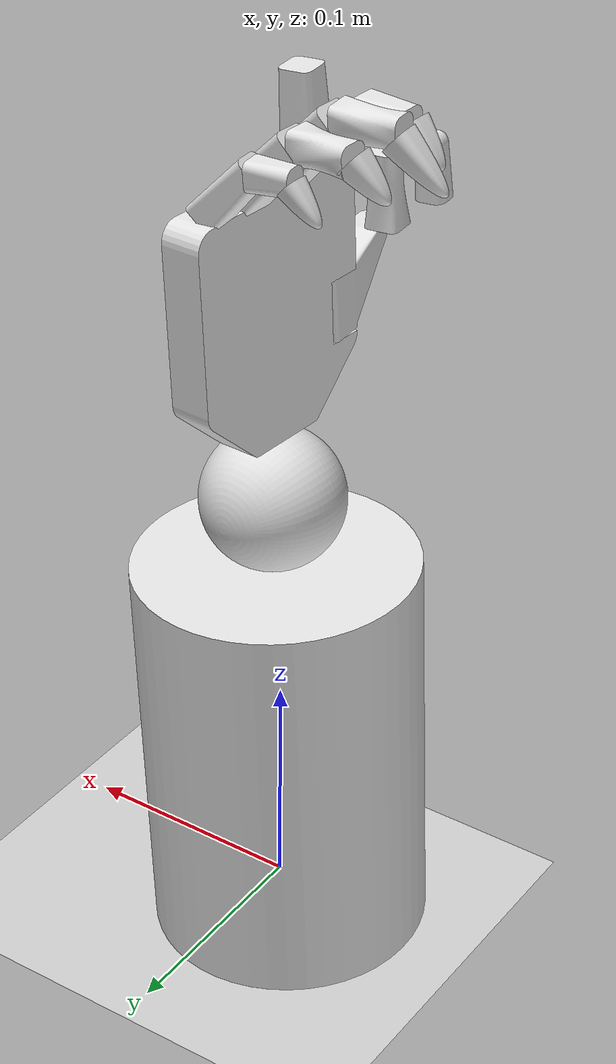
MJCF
<mujoco model="Hand_forearm">
  <compiler angle="radian" autolimits="true" meshdir="assets" />
  <option gravity="0 0 -9.81" integrator="implicitfast" />
  <default>
    <geom contype="2" conaffinity="1" />
  </default>
  <asset>
    <mesh name="fore_arm_1_0" file="fore_arm_1_0.stl" />
    <mesh name="fore_arm_1_1" file="fore_arm_1_1.stl" />
    <mesh name="wrist_1_2" file="wrist_1_2.stl" />
    <mesh name="wrist_1_3" file="wrist_1_3.stl" />
    <mesh name="human_hand_v3__Palm_1_4" file="human_hand_v3__Palm_1_4.stl" />
    <mesh name="human_hand_v3__Palm_1_5" file="human_hand_v3__Palm_1_5.stl" />
    <mesh name="Thumb_finger__Thumb_Base_1_6" file="Thumb_finger__Thumb_Base_1_6.stl" />
    <mesh name="Thumb_finger__Thumb_Base_1_7" file="Thumb_finger__Thumb_Base_1_7.stl" />
    <mesh name="Thumb_finger__Thumb_Proximal_1_8" file="Thumb_finger__Thumb_Proximal_1_8.stl" />
    <mesh name="Thumb_finger__Thumb_Proximal_1_9" file="Thumb_finger__Thumb_Proximal_1_9.stl" />
    <mesh name="Thumb_finger__Thumb_Distal_v2_1_10" file="Thumb_finger__Thumb_Distal_v2_1_10.stl" />
    <mesh name="Thumb_finger__Thumb_Distal_v2_1_11" file="Thumb_finger__Thumb_Distal_v2_1_11.stl" />
    <mesh name="index_assem__Index_Proximal_1_12" file="index_assem__Index_Proximal_1_12.stl" />
    <mesh name="index_assem__Index_Proximal_1_13" file="index_assem__Index_Proximal_1_13.stl" />
    <mesh name="index_assem__Index_Middle_1_14" file="index_assem__Index_Middle_1_14.stl" />
    <mesh name="index_assem__Index_Middle_1_15" file="index_assem__Index_Middle_1_15.stl" />
    <mesh name="index_assem__Index_Distal_1_16" file="index_assem__Index_Distal_1_16.stl" />
    <mesh name="index_assem__Index_Distal_1_17" file="index_assem__Index_Distal_1_17.stl" />
    <mesh name="Middle_Finger__Middle_Proximal_5_18" file="Middle_Finger__Middle_Proximal_5_18.stl" />
    <mesh name="Middle_Finger__Middle_Proximal_5_19" file="Middle_Finger__Middle_Proximal_5_19.stl" />
    <mesh name="Middle_Finger__Middle_Middle_4_20" file="Middle_Finger__Middle_Middle_4_20.stl" />
    <mesh name="Middle_Finger__Middle_Middle_4_21" file="Middle_Finger__Middle_Middle_4_21.stl" />
    <mesh name="Middle_Finger__Middle_Distal_4_22" file="Middle_Finger__Middle_Distal_4_22.stl" />
    <mesh name="Middle_Finger__Middle_Distal_4_23" file="Middle_Finger__Middle_Distal_4_23.stl" />
    <mesh name="Ring_finger__Ring_Proximal_1_24" file="Ring_finger__Ring_Proximal_1_24.stl" />
    <mesh name="Ring_finger__Ring_Proximal_1_25" file="Ring_finger__Ring_Proximal_1_25.stl" />
    <mesh name="Ring_finger__Ring_Middle_1_26" file="Ring_finger__Ring_Middle_1_26.stl" />
    <mesh name="Ring_finger__Ring_Middle_1_27" file="Ring_finger__Ring_Middle_1_27.stl" />
    <mesh name="Ring_finger__Ring_Distal_1_28" file="Ring_finger__Ring_Distal_1_28.stl" />
    <mesh name="Ring_finger__Ring_Distal_1_29" file="Ring_finger__Ring_Distal_1_29.stl" />
    <mesh name="Pinky_finger__Pinky_Proximal_1_30" file="Pinky_finger__Pinky_Proximal_1_30.stl" />
    <mesh name="Pinky_finger__Pinky_Proximal_1_31" file="Pinky_finger__Pinky_Proximal_1_31.stl" />
    <mesh name="Pinky_finger__Pinky_Middle_1_32" file="Pinky_finger__Pinky_Middle_1_32.stl" />
    <mesh name="Pinky_finger__Pinky_Middle_1_33" file="Pinky_finger__Pinky_Middle_1_33.stl" />
    <mesh name="Pinky_finger__Pinky_Distal_1_34" file="Pinky_finger__Pinky_Distal_1_34.stl" />
    <mesh name="Pinky_finger__Pinky_Distal_1_35" file="Pinky_finger__Pinky_Distal_1_35.stl" />
  </asset>
  <worldbody>
    <light pos="0 0 3" dir="0 0 -1" directional="true" />
    <geom name="ground" type="plane" size="5 5 0.1" contype="1" conaffinity="1" rgba="0.8 0.8 0.8 1" />
    <body name="base_link" pos="0 0 0.00362184" quat="0.711679 0.702004 0.0265207 0">
      <inertial pos="-0.0174187597 0.09 -0.0185985164" mass="2.03575" diaginertia="0.00366435 0.00732871 0.00732871" quat="0.707106781 0 0 -0.707106781" />
      <geom pos="0 0 0" quat="1 0 0 0" group="2" contype="0" conaffinity="0" type="mesh" mesh="fore_arm_1_0" rgba="0.894117647 0.894117647 0.894117647 1" name="base_link_visual0" />
      <geom pos="0 0 0" quat="1 0 0 0" group="3" type="mesh" mesh="fore_arm_1_1" rgba="0.4 0.4 0.4 1" name="base_link_collision0" />
      <body name="wrist_1" pos="-0.0174187597 0.21 -0.0185985164" quat="1 0 0 0">
        <joint name="fore_arm_1__wrist_1" pos="0 0 0" axis="0 1 0" type="hinge" range="-0.6 0.6" damping="0.0096045" armature="1.17917e-05" />
        <inertial pos="-3.12250226e-17 0 9.02056208e-17" mass="0.113097" diaginertia="4.0715e-05 4.0715e-05 4.0715e-05" quat="-0 0 -0.707106781 0.707106781" />
        <geom pos="0 0 0" quat="1 0 0 0" group="2" contype="0" conaffinity="0" type="mesh" mesh="wrist_1_2" rgba="0.894117647 0.894117647 0.894117647 1" name="wrist_1_visual0" />
        <geom pos="0 0 0" quat="1 0 0 0" group="3" type="mesh" mesh="wrist_1_3" rgba="0.4 0.4 0.4 1" name="wrist_1_collision0" />
        <body name="human_hand_v3_2__Palm_1" pos="-2.19426456e-06 0.0553974242 1.59257974e-05" quat="1 0 0 0">
          <joint name="wrist_1__human_hand_v3_2__Palm_1" pos="0 0 0" axis="0.136491042 0 -0.990641305" type="hinge" range="-1 1" damping="0.147961" armature="0.000517985" />
          <inertial pos="0.000250354687 0.0305062621 -0.00181705438" mass="0.146725" diaginertia="8.6166947e-05 0.000126512174 0.000204755979" quat="-0.442846972 0.556897198 0.508046583 -0.485428409" />
          <geom pos="0 0 0" quat="1 0 0 0" group="2" contype="0" conaffinity="0" type="mesh" mesh="human_hand_v3__Palm_1_4" rgba="0.894117647 0.894117647 0.894117647 1" name="human_hand_v3_2__Palm_1_visual0" />
          <geom pos="0 0 0" quat="1 0 0 0" group="3" type="mesh" mesh="human_hand_v3__Palm_1_5" rgba="0.4 0.4 0.4 1" name="human_hand_v3_2__Palm_1_collision0" />
          <body name="human_hand_v3_2__Thumb_finger_1__Thumb_Base_1" pos="-0.00505016951 0.00340473831 0.0366537282" quat="1 0 0 0">
            <joint name="human_hand_v3_2__Palm_1__human_hand_v3_2__Thumb_finger_1__Thumb_Base_1" pos="0 0 0" axis="0 1 0" type="hinge" range="0 1" damping="0.00371252" armature="8.1823e-06" />
            <inertial pos="-0.00653645209 0.0205272469 0.00495336418" mass="0.0146302" diaginertia="8.05766527e-07 3.18179044e-06 3.27284303e-06" quat="-0.141575759 0.849168462 0.421200035 -0.285411558" />
            <geom pos="0 0 0" quat="1 0 0 0" group="2" contype="0" conaffinity="0" type="mesh" mesh="Thumb_finger__Thumb_Base_1_6" rgba="0.894117647 0.894117647 0.894117647 1" name="human_hand_v3_2__Thumb_finger_1__Thumb_Base_1_visual0" />
            <geom pos="0 0 0" quat="1 0 0 0" group="3" type="mesh" mesh="Thumb_finger__Thumb_Base_1_7" rgba="0.4 0.4 0.4 1" name="human_hand_v3_2__Thumb_finger_1__Thumb_Base_1_collision0" />
            <body name="human_hand_v3_2__Thumb_finger_1__Thumb_Proximal_1" pos="-0.0193779842 0.0443163935 0.0146851136" quat="1 0 0 0">
              <joint name="human_hand_v3_2__Thumb_finger_1__Thumb_Base_1__human_hand_v3_2__Thumb_finger_1__Thumb_Proximal_1" pos="0 0 0" axis="-0.476687178 -0.353553132 0.8048413" type="hinge" range="0 1" damping="0.00188771" armature="4.71031e-06" />
              <inertial pos="-0.0111452598 0.00888220077 -0.00269890463" mass="0.00482838" diaginertia="1.22991858e-07 4.55144142e-07 4.6443e-07" quat="-0.259851613 0.90369068 -0.285599848 0.185075715" />
              <geom pos="0 0 0" quat="1 0 0 0" group="2" contype="0" conaffinity="0" type="mesh" mesh="Thumb_finger__Thumb_Proximal_1_8" rgba="0.894117647 0.894117647 0.894117647 1" name="human_hand_v3_2__Thumb_finger_1__Thumb_Proximal_1_visual0" />
              <geom pos="0 0 0" quat="1 0 0 0" group="3" type="mesh" mesh="Thumb_finger__Thumb_Proximal_1_9" rgba="0.4 0.4 0.4 1" name="human_hand_v3_2__Thumb_finger_1__Thumb_Proximal_1_collision0" />
              <body name="human_hand_v3_2__Thumb_finger_1__Thumb_Distal_v2_1" pos="-0.0238196197 0.0189835009 -0.00576827623" quat="1 0 0 0">
                <joint name="human_hand_v3_2__Thumb_finger_1__Thumb_Proximal_1__human_hand_v3_2__Thumb_finger_1__Thumb_Distal_v2_1" pos="0 0 0" axis="-0.47668724 -0.35355339 0.80484115" type="hinge" range="0 1.4" damping="0.000266238" armature="4.43016e-07" />
                <inertial pos="-0.0101664767 -0.000805660603 -0.00637526265" mass="0.00306267" diaginertia="5.86964656e-08 1.93958391e-07 1.98802343e-07" quat="0.946459016 0.163905647 -0.265927839 0.0814411089" />
                <geom pos="0 0 0" quat="1 0 0 0" group="2" contype="0" conaffinity="0" type="mesh" mesh="Thumb_finger__Thumb_Distal_v2_1_10" rgba="0.894117647 0.894117647 0.894117647 1" name="human_hand_v3_2__Thumb_finger_1__Thumb_Distal_v2_1_visual0" />
                <geom pos="0 0 0" quat="1 0 0 0" group="3" type="mesh" mesh="Thumb_finger__Thumb_Distal_v2_1_11" rgba="0.4 0.4 0.4 1" name="human_hand_v3_2__Thumb_finger_1__Thumb_Distal_v2_1_collision0" />
              </body>
            </body>
          </body>
          <body name="human_hand_v3_2__index_assem_2__Index_Proximal_1" pos="-0.0038217499 0.0786025758 0.0277379564" quat="1 0 0 0">
            <joint name="human_hand_v3_2__Palm_1__human_hand_v3_2__index_assem_2__Index_Proximal_1" pos="0 0 0" axis="0.13649107 0 -0.990641301" type="hinge" range="0 1.57" damping="0.0046419" armature="1.29433e-05" />
            <inertial pos="-0.0129939243 0.0131166702 -0.00179030928" mass="0.00857536" diaginertia="3.1185078e-07 1.2361772e-06 1.23618002e-06" quat="0.921443597 0.0344429264 -0.0666199515 -0.381204886" />
            <geom pos="0 0 0" quat="1 0 0 0" group="2" contype="0" conaffinity="0" type="mesh" mesh="index_assem__Index_Proximal_1_12" rgba="0.894117647 0.894117647 0.894117647 1" name="human_hand_v3_2__index_assem_2__Index_Proximal_1_visual0" />
            <geom pos="0 0 0" quat="1 0 0 0" group="3" type="mesh" mesh="index_assem__Index_Proximal_1_13" rgba="0.4 0.4 0.4 1" name="human_hand_v3_2__index_assem_2__Index_Proximal_1_collision0" />
            <body name="human_hand_v3_2__index_assem_2__Index_Middle_1" pos="-0.0273190781 0.0275771645 -0.00376403662" quat="1 0 0 0">
              <joint name="human_hand_v3_2__index_assem_2__Index_Proximal_1__human_hand_v3_2__index_assem_2__Index_Middle_1" pos="0 0 0" axis="-0.13649107 0 0.990641301" type="hinge" range="0 1.75" damping="0.000637408" armature="1.26227e-06" />
              <inertial pos="-0.0105480497 2.70428395e-16 -0.0014533157" mass="0.0037779" diaginertia="1.05473197e-07 2.04659e-07 2.04659804e-07" quat="-0.00910217062 0.99761609 0.000624098723 0.0684024673" />
              <geom pos="0 0 0" quat="1 0 0 0" group="2" contype="0" conaffinity="0" type="mesh" mesh="index_assem__Index_Middle_1_14" rgba="0.894117647 0.894117647 0.894117647 1" name="human_hand_v3_2__index_assem_2__Index_Middle_1_visual0" />
              <geom pos="0 0 0" quat="1 0 0 0" group="3" type="mesh" mesh="index_assem__Index_Middle_1_15" rgba="0.4 0.4 0.4 1" name="human_hand_v3_2__index_assem_2__Index_Middle_1_collision0" />
              <body name="human_hand_v3_2__index_assem_2__Index_Distal_1" pos="-0.0217941086 0 -0.00300280349" quat="1 0 0 0">
                <joint name="human_hand_v3_2__index_assem_2__Index_Middle_1__human_hand_v3_2__index_assem_2__Index_Distal_1" pos="0 0 0" axis="-0.13649107 0 0.990641301" type="hinge" range="0 1.22" damping="0.000105071" armature="6.89998e-08" />
                <inertial pos="-0.00467014616 -0.00471385134 -0.000643362851" mass="0.00155249" diaginertia="2.5871339e-08 4.74384958e-08 4.74399652e-08" quat="0.0896743213 0.917713471 0.376527491 0.0893730972" />
                <geom pos="0 0 0" quat="1 0 0 0" group="2" contype="0" conaffinity="0" type="mesh" mesh="index_assem__Index_Distal_1_16" rgba="0.894117647 0.894117647 0.894117647 1" name="human_hand_v3_2__index_assem_2__Index_Distal_1_visual0" />
                <geom pos="0 0 0" quat="1 0 0 0" group="3" type="mesh" mesh="index_assem__Index_Distal_1_17" rgba="0.4 0.4 0.4 1" name="human_hand_v3_2__index_assem_2__Index_Distal_1_collision0" />
              </body>
            </body>
          </body>
          <body name="human_hand_v3_2__Middle_Finger_1__Middle_Proximal_5" pos="-0.00116017408 0.0786025758 0.00842045106" quat="1 0 0 0">
            <joint name="human_hand_v3_2__Palm_1__human_hand_v3_2__Middle_Finger_1__Middle_Proximal_5" pos="0 0 0" axis="0.13649107 0 -0.990641301" type="hinge" range="0 1.57" damping="0.00741109" armature="2.21827e-05" />
            <inertial pos="-0.0150460018 0.0151881327 -0.0020730462" mass="0.0112897" diaginertia="4.68646351e-07 2.12932927e-06 2.12933437e-06" quat="0.307859986 0.234473351 0.652765995 0.651261109" />
            <geom pos="0 0 0" quat="1 0 0 0" group="2" contype="0" conaffinity="0" type="mesh" mesh="Middle_Finger__Middle_Proximal_5_18" rgba="0.894117647 0.894117647 0.894117647 1" name="human_hand_v3_2__Middle_Finger_1__Middle_Proximal_5_visual0" />
            <geom pos="0 0 0" quat="1 0 0 0" group="3" type="mesh" mesh="Middle_Finger__Middle_Proximal_5_19" rgba="0.4 0.4 0.4 1" name="human_hand_v3_2__Middle_Finger_1__Middle_Proximal_5_collision0" />
            <body name="human_hand_v3_2__Middle_Finger_1__Middle_Middle_4" pos="-0.0315220132 0.0318198051 -0.00434311918" quat="1 0 0 0">
              <joint name="human_hand_v3_2__Middle_Finger_1__Middle_Proximal_5__human_hand_v3_2__Middle_Finger_1__Middle_Middle_4" pos="0 0 0" axis="-0.13649107 0 0.990641301" type="hinge" range="0 1.75" damping="0.00111758" armature="2.4779e-06" />
              <inertial pos="-0.012555932 -3.43052775e-10 -0.00172996288" mass="0.00456309" diaginertia="1.25675091e-07 3.48268999e-07 3.4826991e-07" quat="-0.0194918703 0.997467146 0.0013364764 0.0683927899" />
              <geom pos="0 0 0" quat="1 0 0 0" group="2" contype="0" conaffinity="0" type="mesh" mesh="Middle_Finger__Middle_Middle_4_20" rgba="0.894117647 0.894117647 0.894117647 1" name="human_hand_v3_2__Middle_Finger_1__Middle_Middle_4_visual0" />
              <geom pos="0 0 0" quat="1 0 0 0" group="3" type="mesh" mesh="Middle_Finger__Middle_Middle_4_21" rgba="0.4 0.4 0.4 1" name="human_hand_v3_2__Middle_Finger_1__Middle_Middle_4_collision0" />
              <body name="human_hand_v3_2__Middle_Finger_1__Middle_Distal_4" pos="-0.0267473151 0 -0.00368525883" quat="1 0 0 0">
                <joint name="human_hand_v3_2__Middle_Finger_1__Middle_Middle_4__human_hand_v3_2__Middle_Finger_1__Middle_Distal_4" pos="0 0 0" axis="-0.13649107 0 0.990641301" type="hinge" range="0 1.22" damping="0.000164801" armature="1.69746e-07" />
                <inertial pos="-0.00630416183 -0.00636378419 -0.00086826633" mass="0.00209578" diaginertia="3.49258112e-08 1.02342915e-07 1.02343874e-07" quat="-0.350854021 0.163274233 -0.498535005 0.775696996" />
                <geom pos="0 0 0" quat="1 0 0 0" group="2" contype="0" conaffinity="0" type="mesh" mesh="Middle_Finger__Middle_Distal_4_22" rgba="0.894117647 0.894117647 0.894117647 1" name="human_hand_v3_2__Middle_Finger_1__Middle_Distal_4_visual0" />
                <geom pos="0 0 0" quat="1 0 0 0" group="3" type="mesh" mesh="Middle_Finger__Middle_Distal_4_23" rgba="0.4 0.4 0.4 1" name="human_hand_v3_2__Middle_Finger_1__Middle_Distal_4_collision0" />
              </body>
            </body>
          </body>
          <body name="human_hand_v3_2__Ring_finger_1__Ring_Proximal_1" pos="0.00150184627 0.0786021318 -0.0108971583" quat="1 0 0 0">
            <joint name="human_hand_v3_2__Palm_1__human_hand_v3_2__Ring_finger_1__Ring_Proximal_1" pos="0 0 0" axis="0.136491042 0 -0.990641305" type="hinge" range="0 1.57" damping="0.00522938" armature="1.4974e-05" />
            <inertial pos="-0.0136607194 0.013789769 -0.00188201557" mass="0.00901512" diaginertia="3.27843762e-07 1.41903389e-06 1.41903435e-06" quat="0.922009372 -0.011973404 -0.047351169 -0.384074501" />
            <geom pos="0 0 0" quat="1 0 0 0" group="2" contype="0" conaffinity="0" type="mesh" mesh="Ring_finger__Ring_Proximal_1_24" rgba="0.894117647 0.894117647 0.894117647 1" name="human_hand_v3_2__Ring_finger_1__Ring_Proximal_1_visual0" />
            <geom pos="0 0 0" quat="1 0 0 0" group="3" type="mesh" mesh="Ring_finger__Ring_Proximal_1_25" rgba="0.4 0.4 0.4 1" name="human_hand_v3_2__Ring_finger_1__Ring_Proximal_1_collision0" />
            <body name="human_hand_v3_2__Ring_finger_1__Ring_Middle_1" pos="-0.028721 0.028992 -0.003957" quat="1 0 0 0">
              <joint name="human_hand_v3_2__Ring_finger_1__Ring_Proximal_1__human_hand_v3_2__Ring_finger_1__Ring_Middle_1" pos="0 0 0" axis="0.136491042 0 -0.990641305" type="hinge" range="0 1.75" damping="0.000766132" armature="1.6012e-06" />
              <inertial pos="-0.0119455855 -1.78044561e-07 -0.00164589782" mass="0.00389782" diaginertia="9.81454147e-08 2.59584e-07 2.59584586e-07" quat="-0.0142518614 0.997555777 0.00097719893 0.0683988342" />
              <geom pos="0 0 0" quat="1 0 0 0" group="2" contype="0" conaffinity="0" type="mesh" mesh="Ring_finger__Ring_Middle_1_26" rgba="0.894117647 0.894117647 0.894117647 1" name="human_hand_v3_2__Ring_finger_1__Ring_Middle_1_visual0" />
              <geom pos="0 0 0" quat="1 0 0 0" group="3" type="mesh" mesh="Ring_finger__Ring_Middle_1_27" rgba="0.4 0.4 0.4 1" name="human_hand_v3_2__Ring_finger_1__Ring_Middle_1_collision0" />
              <body name="human_hand_v3_2__Ring_finger_1__Ring_Distal_1" pos="-0.024766 0 -0.003412" quat="1 0 0 0">
                <joint name="human_hand_v3_2__Ring_finger_1__Ring_Middle_1__human_hand_v3_2__Ring_finger_1__Ring_Distal_1" pos="0 0 0" axis="0.136491042 0 -0.990641305" type="hinge" range="0 1.22" damping="0.000105068" armature="6.8996e-08" />
                <inertial pos="-0.00466925544 -0.00471442884 -0.000643725935" mass="0.00155249" diaginertia="2.58712976e-08 4.74384877e-08 4.74399147e-08" quat="0.0929763437 0.917390014 0.376189711 0.0907318184" />
                <geom pos="0 0 0" quat="1 0 0 0" group="2" contype="0" conaffinity="0" type="mesh" mesh="Ring_finger__Ring_Distal_1_28" rgba="0.894117647 0.894117647 0.894117647 1" name="human_hand_v3_2__Ring_finger_1__Ring_Distal_1_visual0" />
                <geom pos="0 0 0" quat="1 0 0 0" group="3" type="mesh" mesh="Ring_finger__Ring_Distal_1_29" rgba="0.4 0.4 0.4 1" name="human_hand_v3_2__Ring_finger_1__Ring_Distal_1_collision0" />
              </body>
            </body>
          </body>
          <body name="human_hand_v3_2__Pinky_finger_1__Pinky_Proximal_1" pos="0.00395784627 0.0786021318 -0.0287281583" quat="1 0 0 0">
            <joint name="human_hand_v3_2__Palm_1__human_hand_v3_2__Pinky_finger_1__Pinky_Proximal_1" pos="0 0 0" axis="0.136491042 0 -0.990641305" type="hinge" range="0 1.57" damping="0.00205277" armature="5.15863e-06" />
            <inertial pos="-0.0105658347 0.0106664973 -0.00145628452" mass="0.00524416" diaginertia="1.42027765e-07 5.14705627e-07 5.14709608e-07" quat="0.921817418 0.0223036187 -0.0615941035 -0.3820489" />
            <geom pos="0 0 0" quat="1 0 0 0" group="2" contype="0" conaffinity="0" type="mesh" mesh="Pinky_finger__Pinky_Proximal_1_30" rgba="0.894117647 0.894117647 0.894117647 1" name="human_hand_v3_2__Pinky_finger_1__Pinky_Proximal_1_visual0" />
            <geom pos="0 0 0" quat="1 0 0 0" group="3" type="mesh" mesh="Pinky_finger__Pinky_Proximal_1_31" rgba="0.4 0.4 0.4 1" name="human_hand_v3_2__Pinky_finger_1__Pinky_Proximal_1_collision0" />
            <body name="human_hand_v3_2__Pinky_finger_1__Pinky_Middle_1" pos="-0.022415 0.022628 -0.003089" quat="1 0 0 0">
              <joint name="human_hand_v3_2__Pinky_finger_1__Pinky_Proximal_1__human_hand_v3_2__Pinky_finger_1__Pinky_Middle_1" pos="0 0 0" axis="0.136491042 0 -0.990641305" type="hinge" range="0 1.75" damping="0.000289154" armature="5.22563e-07" />
              <inertial pos="-0.00856196154 -1.38968682e-07 -0.00117951545" mass="0.00219107" diaginertia="4.31909565e-08 8.04824998e-08 8.04829437e-08" quat="-0.0117597287 0.997588269 0.000806331714 0.0684010562" />
              <geom pos="0 0 0" quat="1 0 0 0" group="2" contype="0" conaffinity="0" type="mesh" mesh="Pinky_finger__Pinky_Middle_1_32" rgba="0.894117647 0.894117647 0.894117647 1" name="human_hand_v3_2__Pinky_finger_1__Pinky_Middle_1_visual0" />
              <geom pos="0 0 0" quat="1 0 0 0" group="3" type="mesh" mesh="Pinky_finger__Pinky_Middle_1_33" rgba="0.4 0.4 0.4 1" name="human_hand_v3_2__Pinky_finger_1__Pinky_Middle_1_collision0" />
              <body name="human_hand_v3_2__Pinky_finger_1__Pinky_Distal_1" pos="-0.017832 0 -0.002457" quat="1 0 0 0">
                <joint name="human_hand_v3_2__Pinky_finger_1__Pinky_Middle_1__human_hand_v3_2__Pinky_finger_1__Pinky_Distal_1" pos="0 0 0" axis="0.136491042 0 -0.990641305" type="hinge" range="0 1.22" damping="7.45559e-05" armature="3.47411e-08" />
                <inertial pos="-0.00420252505 -0.00424251716 -0.000578412381" mass="0.000965173" diaginertia="1.1048089e-08 2.28965617e-08 2.28979493e-08" quat="0.0162111477 0.921944785 0.382448886 0.0590581269" />
                <geom pos="0 0 0" quat="1 0 0 0" group="2" contype="0" conaffinity="0" type="mesh" mesh="Pinky_finger__Pinky_Distal_1_34" rgba="0.894117647 0.894117647 0.894117647 1" name="human_hand_v3_2__Pinky_finger_1__Pinky_Distal_1_visual0" />
                <geom pos="0 0 0" quat="1 0 0 0" group="3" type="mesh" mesh="Pinky_finger__Pinky_Distal_1_35" rgba="0.4 0.4 0.4 1" name="human_hand_v3_2__Pinky_finger_1__Pinky_Distal_1_collision0" />
              </body>
            </body>
          </body>
        </body>
      </body>
    </body>
  </worldbody>
  <keyframe>
    <key name="home" qpos="0 0 0 0 0 0 0 0 0 0 0 0 0 0 0 0 0" />
  </keyframe>
<actuator><position name="act_fore_arm_1__wrist_1" joint="fore_arm_1__wrist_1" kp="0.977874" ctrllimited="true" ctrlrange="-0.6 0.6" forcelimited="true" forcerange="-0.488937 0.488937" /><position name="act_wrist_1__human_hand_v3_2__Palm_1" joint="wrist_1__human_hand_v3_2__Palm_1" kp="5.2831" ctrllimited="true" ctrlrange="-1 1" forcelimited="true" forcerange="-2.64155 2.64155" /><position name="act_human_hand_v3_2__Palm_1__human_hand_v3_2__Thumb_finger_1__Thumb_Base_1" joint="human_hand_v3_2__Palm_1__human_hand_v3_2__Thumb_finger_1__Thumb_Base_1" kp="0.210559" ctrllimited="true" ctrlrange="0 1" forcelimited="true" forcerange="-0.105279 0.105279" /><position name="act_human_hand_v3_2__Thumb_finger_1__Thumb_Base_1__human_hand_v3_2__Thumb_finger_1__Thumb_Proximal_1" joint="human_hand_v3_2__Thumb_finger_1__Thumb_Base_1__human_hand_v3_2__Thumb_finger_1__Thumb_Proximal_1" kp="0.0945651" ctrllimited="true" ctrlrange="0 1" forcelimited="true" forcerange="-0.0472826 0.0472826" /><position name="act_human_hand_v3_2__Thumb_finger_1__Thumb_Proximal_1__human_hand_v3_2__Thumb_finger_1__Thumb_Distal_v2_1" joint="human_hand_v3_2__Thumb_finger_1__Thumb_Proximal_1__human_hand_v3_2__Thumb_finger_1__Thumb_Distal_v2_1" kp="0.02" ctrllimited="true" ctrlrange="0 1.4" forcelimited="true" forcerange="-0.01 0.01" /><position name="act_human_hand_v3_2__Palm_1__human_hand_v3_2__index_assem_2__Index_Proximal_1" joint="human_hand_v3_2__Palm_1__human_hand_v3_2__index_assem_2__Index_Proximal_1" kp="0.208093" ctrllimited="true" ctrlrange="0 1.57" forcelimited="true" forcerange="-0.104047 0.104047" /><position name="act_human_hand_v3_2__index_assem_2__Index_Proximal_1__human_hand_v3_2__index_assem_2__Index_Middle_1" joint="human_hand_v3_2__index_assem_2__Index_Proximal_1__human_hand_v3_2__index_assem_2__Index_Middle_1" kp="0.0402341" ctrllimited="true" ctrlrange="0 1.75" forcelimited="true" forcerange="-0.020117 0.020117" /><position name="act_human_hand_v3_2__index_assem_2__Index_Middle_1__human_hand_v3_2__index_assem_2__Index_Distal_1" joint="human_hand_v3_2__index_assem_2__Index_Middle_1__human_hand_v3_2__index_assem_2__Index_Distal_1" kp="0.02" ctrllimited="true" ctrlrange="0 1.22" forcelimited="true" forcerange="-0.01 0.01" /><position name="act_human_hand_v3_2__Palm_1__human_hand_v3_2__Middle_Finger_1__Middle_Proximal_5" joint="human_hand_v3_2__Palm_1__human_hand_v3_2__Middle_Finger_1__Middle_Proximal_5" kp="0.3095" ctrllimited="true" ctrlrange="0 1.57" forcelimited="true" forcerange="-0.15475 0.15475" /><position name="act_human_hand_v3_2__Middle_Finger_1__Middle_Proximal_5__human_hand_v3_2__Middle_Finger_1__Middle_Middle_4" joint="human_hand_v3_2__Middle_Finger_1__Middle_Proximal_5__human_hand_v3_2__Middle_Finger_1__Middle_Middle_4" kp="0.0630059" ctrllimited="true" ctrlrange="0 1.75" forcelimited="true" forcerange="-0.0315029 0.0315029" /><position name="act_human_hand_v3_2__Middle_Finger_1__Middle_Middle_4__human_hand_v3_2__Middle_Finger_1__Middle_Distal_4" joint="human_hand_v3_2__Middle_Finger_1__Middle_Middle_4__human_hand_v3_2__Middle_Finger_1__Middle_Distal_4" kp="0.02" ctrllimited="true" ctrlrange="0 1.22" forcelimited="true" forcerange="-0.01 0.01" /><position name="act_human_hand_v3_2__Palm_1__human_hand_v3_2__Ring_finger_1__Ring_Proximal_1" joint="human_hand_v3_2__Palm_1__human_hand_v3_2__Ring_finger_1__Ring_Proximal_1" kp="0.228283" ctrllimited="true" ctrlrange="0 1.57" forcelimited="true" forcerange="-0.114141 0.114141" /><position name="act_human_hand_v3_2__Ring_finger_1__Ring_Proximal_1__human_hand_v3_2__Ring_finger_1__Ring_Middle_1" joint="human_hand_v3_2__Ring_finger_1__Ring_Proximal_1__human_hand_v3_2__Ring_finger_1__Ring_Middle_1" kp="0.0458218" ctrllimited="true" ctrlrange="0 1.75" forcelimited="true" forcerange="-0.0229109 0.0229109" /><position name="act_human_hand_v3_2__Ring_finger_1__Ring_Middle_1__human_hand_v3_2__Ring_finger_1__Ring_Distal_1" joint="human_hand_v3_2__Ring_finger_1__Ring_Middle_1__human_hand_v3_2__Ring_finger_1__Ring_Distal_1" kp="0.02" ctrllimited="true" ctrlrange="0 1.22" forcelimited="true" forcerange="-0.01 0.01" /><position name="act_human_hand_v3_2__Palm_1__human_hand_v3_2__Pinky_finger_1__Pinky_Proximal_1" joint="human_hand_v3_2__Palm_1__human_hand_v3_2__Pinky_finger_1__Pinky_Proximal_1" kp="0.102107" ctrllimited="true" ctrlrange="0 1.57" forcelimited="true" forcerange="-0.0510536 0.0510536" /><position name="act_human_hand_v3_2__Pinky_finger_1__Pinky_Proximal_1__human_hand_v3_2__Pinky_finger_1__Pinky_Middle_1" joint="human_hand_v3_2__Pinky_finger_1__Pinky_Proximal_1__human_hand_v3_2__Pinky_finger_1__Pinky_Middle_1" kp="0.02" ctrllimited="true" ctrlrange="0 1.75" forcelimited="true" forcerange="-0.01 0.01" /><position name="act_human_hand_v3_2__Pinky_finger_1__Pinky_Middle_1__human_hand_v3_2__Pinky_finger_1__Pinky_Distal_1" joint="human_hand_v3_2__Pinky_finger_1__Pinky_Middle_1__human_hand_v3_2__Pinky_finger_1__Pinky_Distal_1" kp="0.02" ctrllimited="true" ctrlrange="0 1.22" forcelimited="true" forcerange="-0.01 0.01" /></actuator><sensor><jointpos name="q_fore_arm_1__wrist_1" joint="fore_arm_1__wrist_1" /><jointpos name="q_wrist_1__human_hand_v3_2__Palm_1" joint="wrist_1__human_hand_v3_2__Palm_1" /><jointpos name="q_human_hand_v3_2__Palm_1__human_hand_v3_2__Thumb_finger_1__Thumb_Base_1" joint="human_hand_v3_2__Palm_1__human_hand_v3_2__Thumb_finger_1__Thumb_Base_1" /><jointpos name="q_human_hand_v3_2__Thumb_finger_1__Thumb_Base_1__human_hand_v3_2__Thumb_finger_1__Thumb_Proximal_1" joint="human_hand_v3_2__Thumb_finger_1__Thumb_Base_1__human_hand_v3_2__Thumb_finger_1__Thumb_Proximal_1" /><jointpos name="q_human_hand_v3_2__Thumb_finger_1__Thumb_Proximal_1__human_hand_v3_2__Thumb_finger_1__Thumb_Distal_v2_1" joint="human_hand_v3_2__Thumb_finger_1__Thumb_Proximal_1__human_hand_v3_2__Thumb_finger_1__Thumb_Distal_v2_1" /><jointpos name="q_human_hand_v3_2__Palm_1__human_hand_v3_2__index_assem_2__Index_Proximal_1" joint="human_hand_v3_2__Palm_1__human_hand_v3_2__index_assem_2__Index_Proximal_1" /><jointpos name="q_human_hand_v3_2__index_assem_2__Index_Proximal_1__human_hand_v3_2__index_assem_2__Index_Middle_1" joint="human_hand_v3_2__index_assem_2__Index_Proximal_1__human_hand_v3_2__index_assem_2__Index_Middle_1" /><jointpos name="q_human_hand_v3_2__index_assem_2__Index_Middle_1__human_hand_v3_2__index_assem_2__Index_Distal_1" joint="human_hand_v3_2__index_assem_2__Index_Middle_1__human_hand_v3_2__index_assem_2__Index_Distal_1" /><jointpos name="q_human_hand_v3_2__Palm_1__human_hand_v3_2__Middle_Finger_1__Middle_Proximal_5" joint="human_hand_v3_2__Palm_1__human_hand_v3_2__Middle_Finger_1__Middle_Proximal_5" /><jointpos name="q_human_hand_v3_2__Middle_Finger_1__Middle_Proximal_5__human_hand_v3_2__Middle_Finger_1__Middle_Middle_4" joint="human_hand_v3_2__Middle_Finger_1__Middle_Proximal_5__human_hand_v3_2__Middle_Finger_1__Middle_Middle_4" /><jointpos name="q_human_hand_v3_2__Middle_Finger_1__Middle_Middle_4__human_hand_v3_2__Middle_Finger_1__Middle_Distal_4" joint="human_hand_v3_2__Middle_Finger_1__Middle_Middle_4__human_hand_v3_2__Middle_Finger_1__Middle_Distal_4" /><jointpos name="q_human_hand_v3_2__Palm_1__human_hand_v3_2__Ring_finger_1__Ring_Proximal_1" joint="human_hand_v3_2__Palm_1__human_hand_v3_2__Ring_finger_1__Ring_Proximal_1" /><jointpos name="q_human_hand_v3_2__Ring_finger_1__Ring_Proximal_1__human_hand_v3_2__Ring_finger_1__Ring_Middle_1" joint="human_hand_v3_2__Ring_finger_1__Ring_Proximal_1__human_hand_v3_2__Ring_finger_1__Ring_Middle_1" /><jointpos name="q_human_hand_v3_2__Ring_finger_1__Ring_Middle_1__human_hand_v3_2__Ring_finger_1__Ring_Distal_1" joint="human_hand_v3_2__Ring_finger_1__Ring_Middle_1__human_hand_v3_2__Ring_finger_1__Ring_Distal_1" /><jointpos name="q_human_hand_v3_2__Palm_1__human_hand_v3_2__Pinky_finger_1__Pinky_Proximal_1" joint="human_hand_v3_2__Palm_1__human_hand_v3_2__Pinky_finger_1__Pinky_Proximal_1" /><jointpos name="q_human_hand_v3_2__Pinky_finger_1__Pinky_Proximal_1__human_hand_v3_2__Pinky_finger_1__Pinky_Middle_1" joint="human_hand_v3_2__Pinky_finger_1__Pinky_Proximal_1__human_hand_v3_2__Pinky_finger_1__Pinky_Middle_1" /><jointpos name="q_human_hand_v3_2__Pinky_finger_1__Pinky_Middle_1__human_hand_v3_2__Pinky_finger_1__Pinky_Distal_1" joint="human_hand_v3_2__Pinky_finger_1__Pinky_Middle_1__human_hand_v3_2__Pinky_finger_1__Pinky_Distal_1" /></sensor></mujoco>
